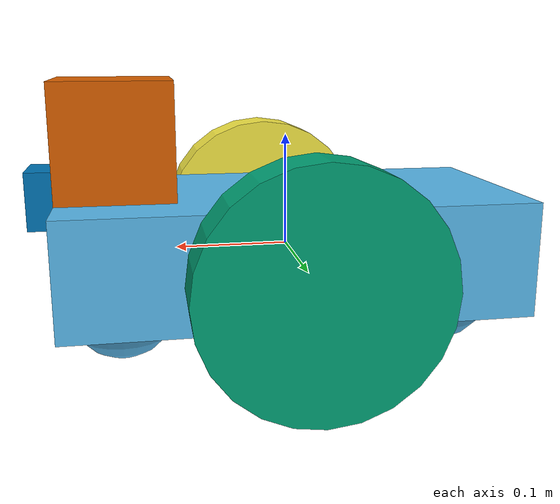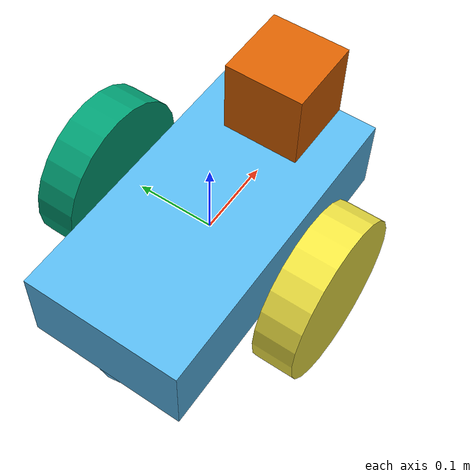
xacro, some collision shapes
<?xml version='1.0'?>

<!-- Steve: I'm totally going to work in the actual MiniHawk model. Forced to do the stupid box with wheels for now. -->

<robot name="mini_hawk" xmlns:xacro="http://www.ros.org/wiki/xacro">

  <xacro:include filename="$(find mini_hawk)/urdf/mini_hawk.gazebo" />
  <link name="robot_footprint"></link>

  <joint name="robot_footprint_joint" type="fixed">
    <origin xyz="0 0 0" rpy="0 0 0" />
    <parent link="robot_footprint"/>
    <child link="chassis" />
  </joint>

  <link name='chassis'>
    <pose>0 0 0.1 0 0 0</pose>

    <inertial>
      <mass value="15.0"/>
      <origin xyz="0.0 0 0" rpy=" 0 0 0"/>
      <inertia
          ixx="0.1" ixy="0" ixz="0"
          iyy="0.1" iyz="0"
          izz="0.1"
      />
    </inertial>

    <collision name='collision'>
      <origin xyz="0 0 0" rpy=" 0 0 0"/>
      <geometry>
        <box size=".4 .2 .1"/>
      </geometry>
    </collision>

    <visual name='chassis_visual'>
      <origin xyz="0 0 0" rpy=" 0 0 0"/>
      <geometry>
        <box size=".4 .2 .1"/>
      </geometry>
    </visual>

    <collision name='back_caster_collision'>
      <origin xyz="-0.15 0 -0.05" rpy=" 0 0 0"/>
      <geometry>
        <sphere radius="0.0499"/>
      </geometry>
    </collision>

    <visual name='back_caster_visual'>
      <origin xyz="-0.15 0 -0.05" rpy=" 0 0 0"/>
      <geometry>
        <sphere radius="0.05"/>
      </geometry>
    </visual>

    <collision name='front_caster_collision'>
      <origin xyz="0.15 0 -0.05" rpy=" 0 0 0"/>
      <geometry>
        <sphere radius="0.0499"/>
      </geometry>
    </collision>

    <visual name='front_caster_visual'>
      <origin xyz="0.15 0 -0.05" rpy=" 0 0 0"/>
      <geometry>
        <sphere radius="0.05"/>
      </geometry>
    </visual>

  </link>

  <link name="left_wheel">
    <inertial>
      <mass value="5.0"/>
      <origin xyz="0.0 0 0" rpy=" 0 1.5707 1.5707"/>
      <inertia
          ixx="0.1" ixy="0" ixz="0"
          iyy="0.1" iyz="0"
          izz="0.1"
      />
    </inertial>

    <collision name='left_wheel_collision'>
      <origin xyz="0 0 0" rpy=" 0 1.5707 1.5707"/>
      <geometry>
        <cylinder radius="0.1" length="0.05"/>
      </geometry>
    </collision>

    <visual name='left_wheel_visual'>
      <origin xyz="0 0 0" rpy=" 0 1.5707 1.5707"/>
      <geometry>
        <cylinder radius="0.1" length="0.05"/>
      </geometry>
    </visual>
  </link>

  <link name="right_wheel">
    <inertial>
      <mass value="5.0"/>
      <origin xyz="0.0 0 0" rpy=" 0 1.5707 1.5707"/>
      <inertia
          ixx="0.1" ixy="0" ixz="0"
          iyy="0.1" iyz="0"
          izz="0.1"
      />
    </inertial>

    <collision name='right_wheel_collision'>
      <origin xyz="0 0 0" rpy=" 0 1.5707 1.5707"/>
      <geometry>
        <cylinder radius="0.1" length="0.05"/>
      </geometry>
    </collision>

    <visual name='right_wheel_visual'>
      <origin xyz="0 0 0" rpy=" 0 1.5707 1.5707"/>
      <geometry>
        <cylinder radius="0.1" length="0.05"/>
      </geometry>
    </visual>
  </link>

  <link name="camera">
    <collision name="camera_collision">
      <origin xyz="0 0 0" rpy="0 0 0"/>
      <geometry>
        <box size="0.05 0.05 0.05"/>
      </geometry>
    </collision>
    <visual name="camera_visual">
      <origin xyz="0 0 0" rpy="0 0 0"/>
      <geometry>
        <box size="0.05 0.05 0.05"/>
      </geometry>
    </visual>
    <inertial name="camera_inertial">
      <mass value="0.1" />
      <origin xyz="0 0 0" rpy="0 0 0"/>
      <inertia ixx="1e-6" ixy="0" ixz="0" iyy="1e-6" iyz="0" izz="1e-6" />
    </inertial>
  </link>

  <link name="hokuyo">
    <collision>
      <origin xyz="0 0 0" rpy="0 0 0"/>
      <geometry>
        <box size="0.1 0.1 0.1"/>
      </geometry>
    </collision>
    <visual>
      <origin xyz="0 0 0" rpy="0 0 0"/>
      <geometry>
        <mesh filename="package://mini_hawk/meshes/hokuyo.dae"/>
      </geometry>
    </visual>
    <inertial>
      <mass value="1e-5" />
      <origin xyz="0 0 0" rpy="0 0 0"/>
      <inertia ixx="1e-6" ixy="0" ixz="0" iyy="1e-6" iyz="0" izz="1e-6" />
    </inertial>
  </link>

  <joint type="fixed" name="camera_joint">
    <origin xyz="0.2 0 0.05" rpy="0 0 0"/>
    <child link="camera"/>
    <parent link="chassis"/>
    <axis xyz="0 1 0"/>
  </joint>

  <joint type="fixed" name="hokuyo_joint">
    <origin xyz="0.15 0 0.1" rpy="0 0 0"/>
    <child link="hokuyo"/>
    <parent link="chassis"/>
    <axis xyz="0 1 0"/>
  </joint>

  <joint type="continuous" name="left_wheel_hinge">
    <origin xyz="0 0.15 0" rpy="0 0 0"/>
    <child link="left_wheel"/>
    <parent link="chassis"/>
    <axis xyz="0 1 0" rpy="0 0 0"/>
    <limit effort="10000" velocity="1000"/>
    <dynamics damping="1.0" friction="1.0"/>
  </joint>

  <joint type="continuous" name="right_wheel_hinge">
    <origin xyz="0 -0.15 0" rpy="0 0 0"/>
    <child link="right_wheel"/>
    <parent link="chassis"/>
    <axis xyz="0 1 0" rpy="0 0 0"/>
    <limit effort="10000" velocity="1000"/>
    <dynamics damping="1.0" friction="1.0"/>
  </joint>

</robot>
